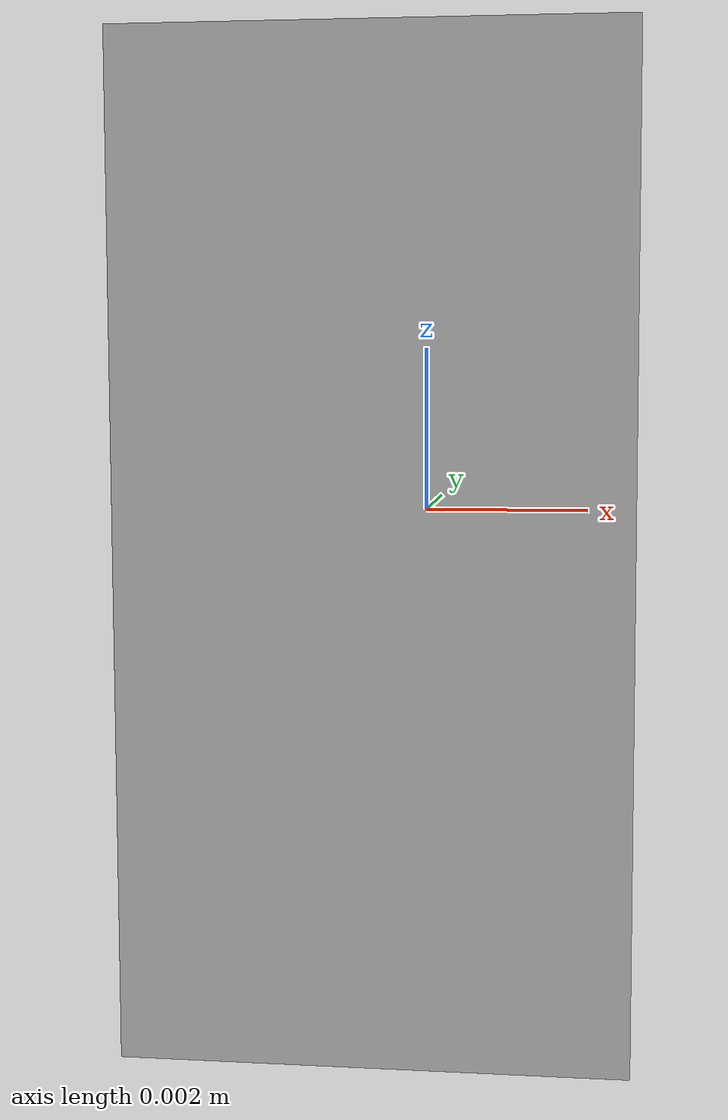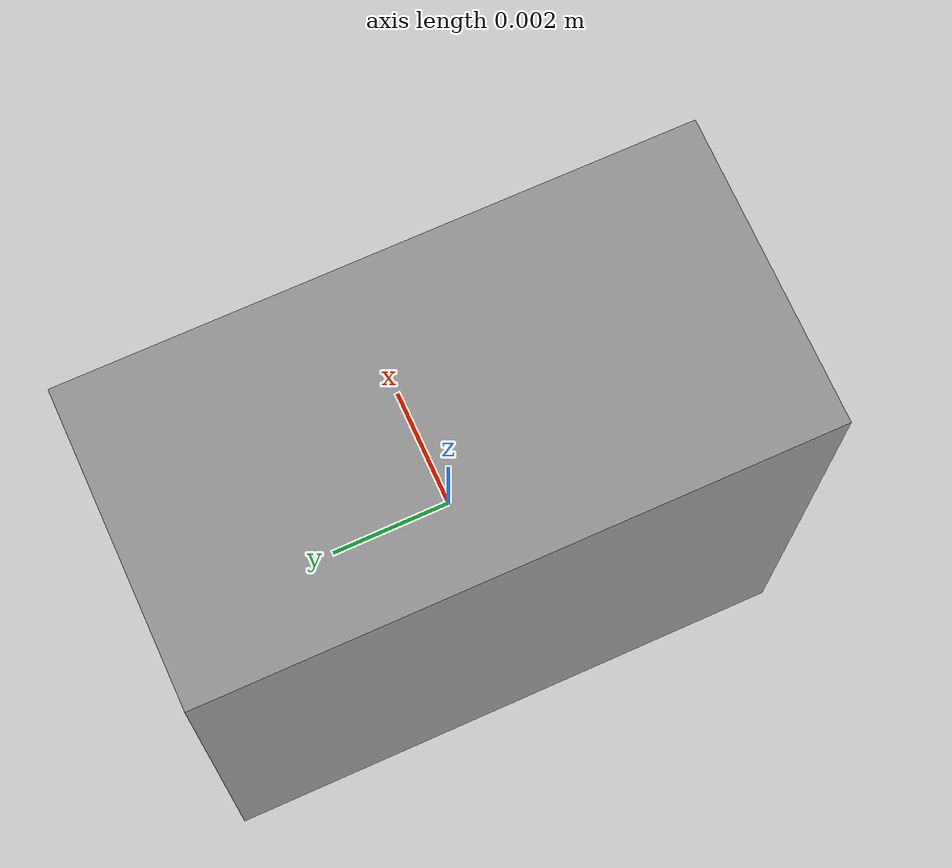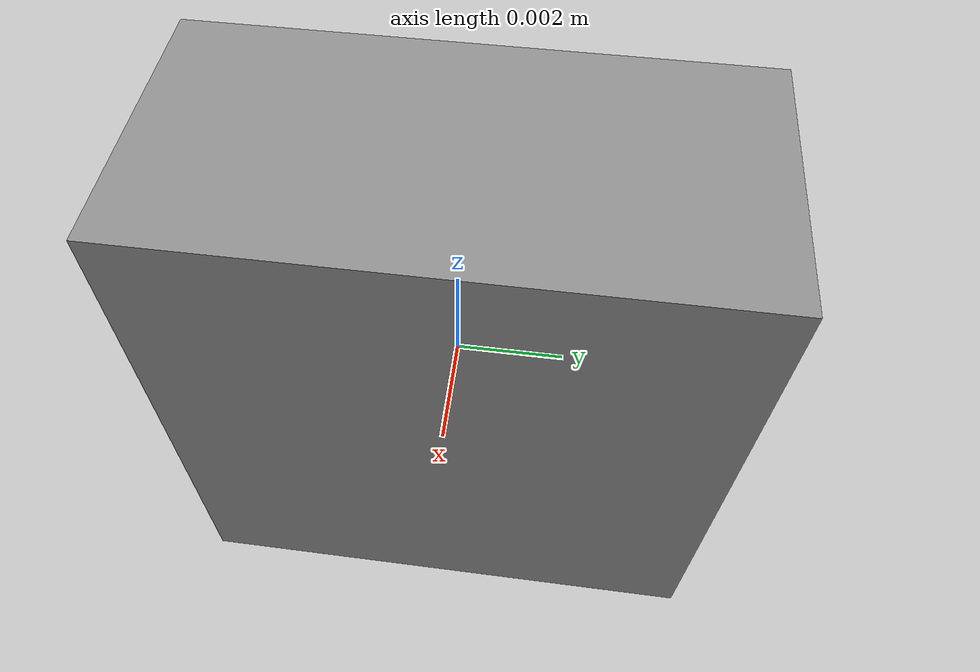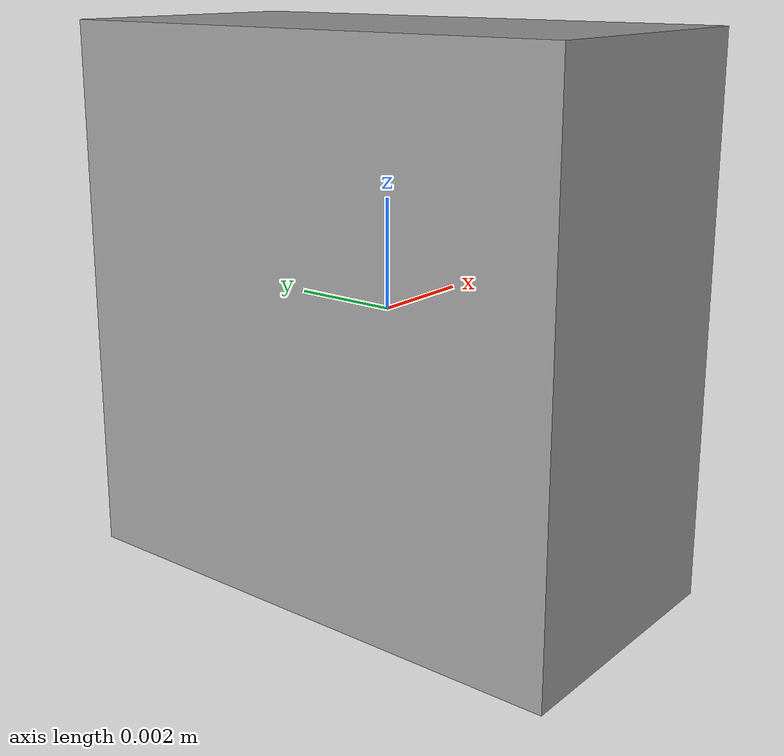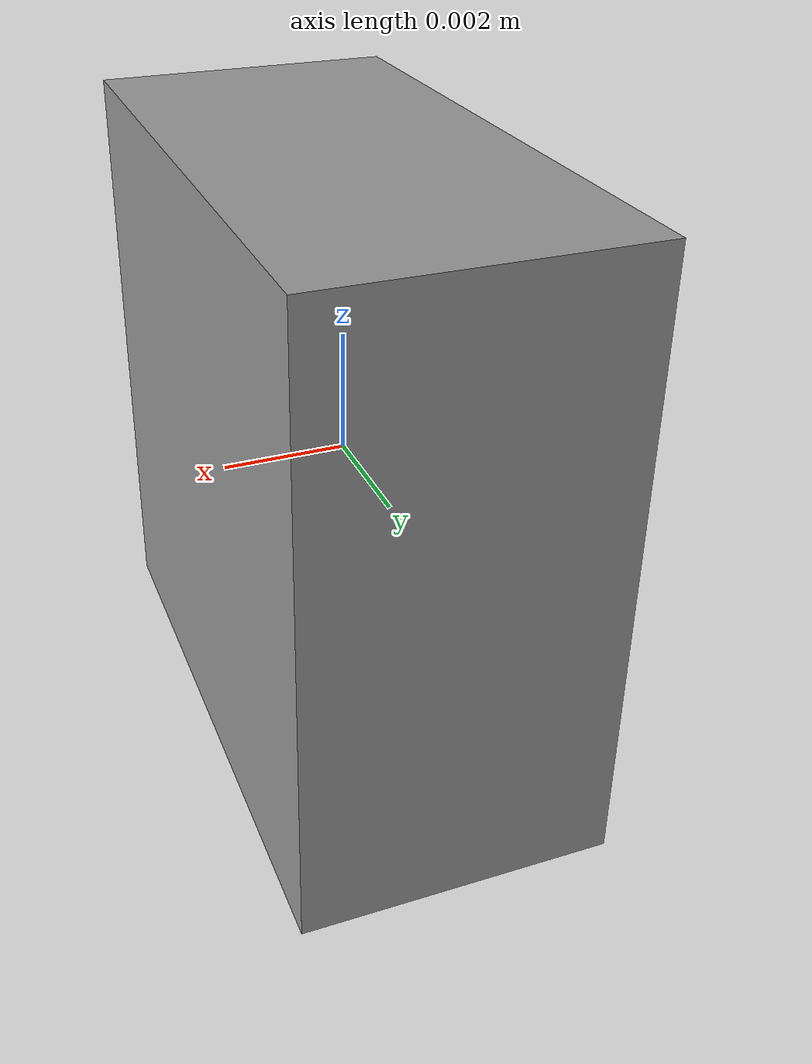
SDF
<?xml version='1.0'?>

<sdf version='1.6'>
  <model name='camera_follow'>
    <link name='link_camera'>
      <inertial>
        <mass>0.001</mass>
        <inertia>
          <ixx>4.1e-07</ixx>
          <ixy>0</ixy>
          <ixz>0</ixz>
          <iyy>7.9e-07</iyy>
          <iyz>0</iyz>
          <izz>4.1e-07</izz>
        </inertia>
        <pose frame=''>0 0 0 0 -0 0</pose>
      </inertial>
      <pose frame=''>0 0 0 0 -0 0</pose>
      <gravity>1</gravity>
      <self_collide>0</self_collide>
      <kinematic>0</kinematic>
      <enable_wind>0</enable_wind>
      <visual name='visual'>
        <pose frame=''>0 0 0 0 -0 0</pose>
        <geometry>
          <box>
            <size>0.005 0.01 0.01</size>
          </box>
        </geometry>
        <material>
          <lighting>1</lighting>
          <script>
            <uri>file://media/materials/scripts/gazebo.material</uri>
            <name>Gazebo/Grey</name>
          </script>
          <shader type='vertex'>
            <normal_map>__default__</normal_map>
          </shader>
          <ambient>0.3 0.3 0.3 1</ambient>
          <diffuse>0.7 0.7 0.7 1</diffuse>
          <specular>0.01 0.01 0.01 1</specular>
          <emissive>0 0 0 1</emissive>
        </material>
        <transparency>0</transparency>
        <cast_shadows>1</cast_shadows>
      </visual>
      <collision name='collision'>
        <laser_retro>0</laser_retro>
        <max_contacts>10</max_contacts>
        <pose frame=''>0 0 0 0 -0 0</pose>
        <geometry>
          <box>
            <size>0.005 0.01 0.01</size>
          </box>
        </geometry>
        <surface>
          <friction>
            <ode>
              <mu>1</mu>
              <mu2>1</mu2>
              <fdir1>0 0 0</fdir1>
              <slip1>0</slip1>
              <slip2>0</slip2>
            </ode>
            <torsional>
              <coefficient>1</coefficient>
              <patch_radius>0</patch_radius>
              <surface_radius>0</surface_radius>
              <use_patch_radius>1</use_patch_radius>
              <ode>
                <slip>0</slip>
              </ode>
            </torsional>
          </friction>
          <bounce>
            <restitution_coefficient>0</restitution_coefficient>
            <threshold>1e+06</threshold>
          </bounce>
          <contact>
            <collide_without_contact>0</collide_without_contact>
            <collide_without_contact_bitmask>1</collide_without_contact_bitmask>
            <collide_bitmask>1</collide_bitmask>
            <ode>
              <soft_cfm>0</soft_cfm>
              <soft_erp>0.2</soft_erp>
              <kp>1e+13</kp>
              <kd>1</kd>
              <max_vel>0.01</max_vel>
              <min_depth>0</min_depth>
            </ode>
            <bullet>
              <split_impulse>1</split_impulse>
              <split_impulse_penetration_threshold>-0.01</split_impulse_penetration_threshold>
              <soft_cfm>0</soft_cfm>
              <soft_erp>0.2</soft_erp>
              <kp>1e+13</kp>
              <kd>1</kd>
            </bullet>
          </contact>
        </surface>
      </collision>
      <sensor type="camera" name="camera1">
        <update_rate>30.0</update_rate>
        <camera name="head">
          <horizontal_fov>1.3708</horizontal_fov>
          <image>
            <width>1920</width>
            <height>1080</height>
            <format>R8G8B8</format>
          </image>
          <clip>
            <near>0.02</near>
            <far>100</far>
          </clip>
          <noise>
            <type>gaussian</type>
            <mean>0.0</mean>
            <stddev>0.0</stddev>
          </noise>
        </camera>

        <plugin name="camera_controller" filename="libgazebo_ros_camera.so">
          <alwaysOn>true</alwaysOn>
          <updateRate>0.0</updateRate>
          <cameraName>/rcCar/camera_follow</cameraName>
          <imageTopicName>image_raw</imageTopicName>
          <cameraInfoTopicName>camera_info</cameraInfoTopicName>
          <frameName>link_camera</frameName>
          <hackBaseline>0.0</hackBaseline>
          <distortionK1>0.0</distortionK1>
          <distortionK2>0.0</distortionK2>
          <distortionK3>0.0</distortionK3>
          <distortionT1>0.0</distortionT1>
          <distortionT2>0.0</distortionT2>
	  <robotNamespace></robotNamespace>
        </plugin>

      </sensor>
    </link>
  </model>
</sdf>
